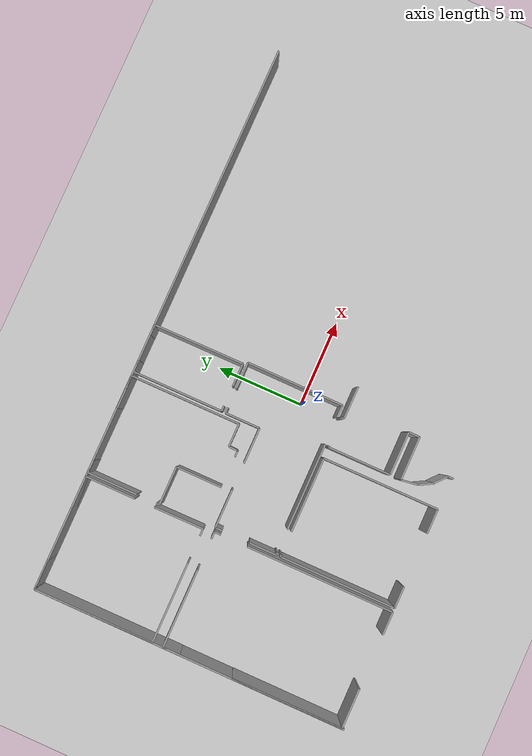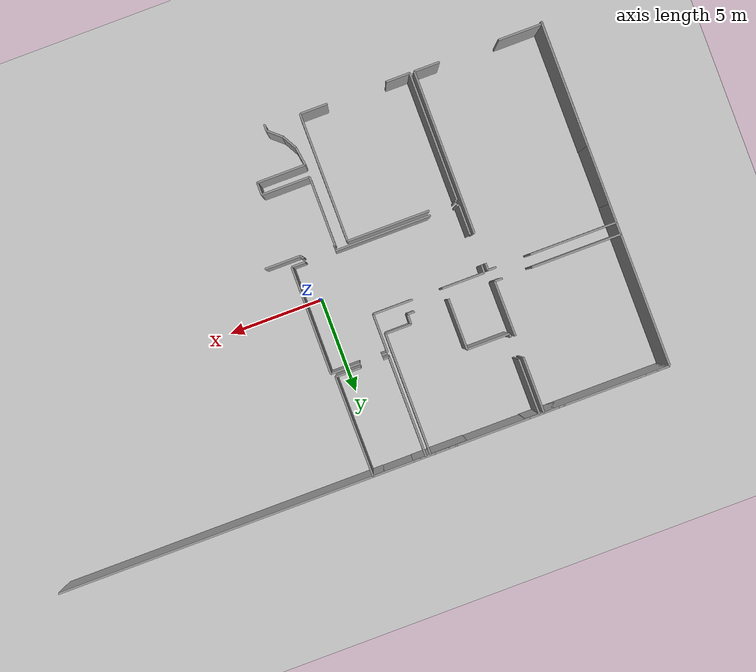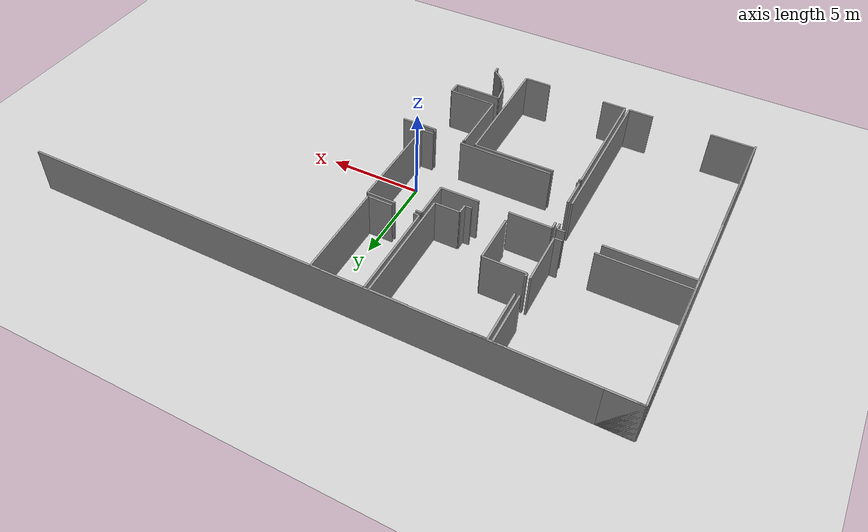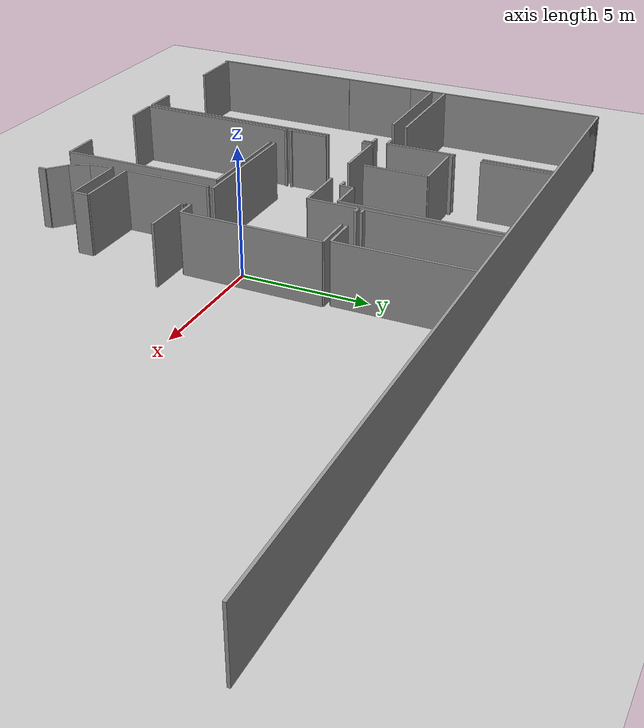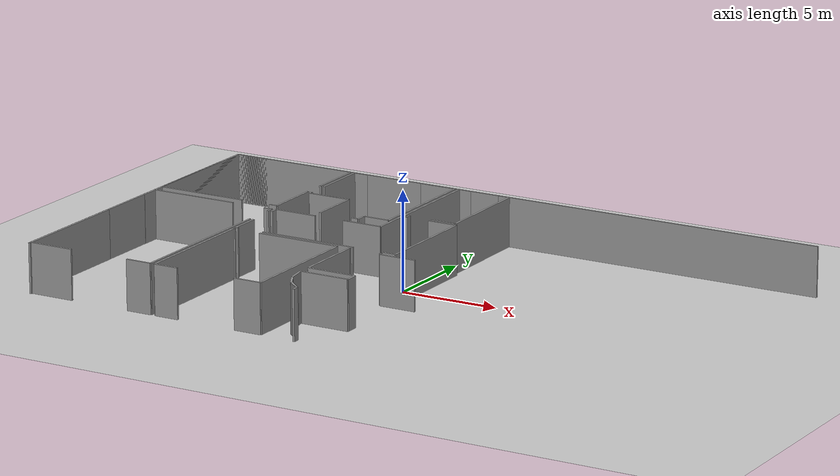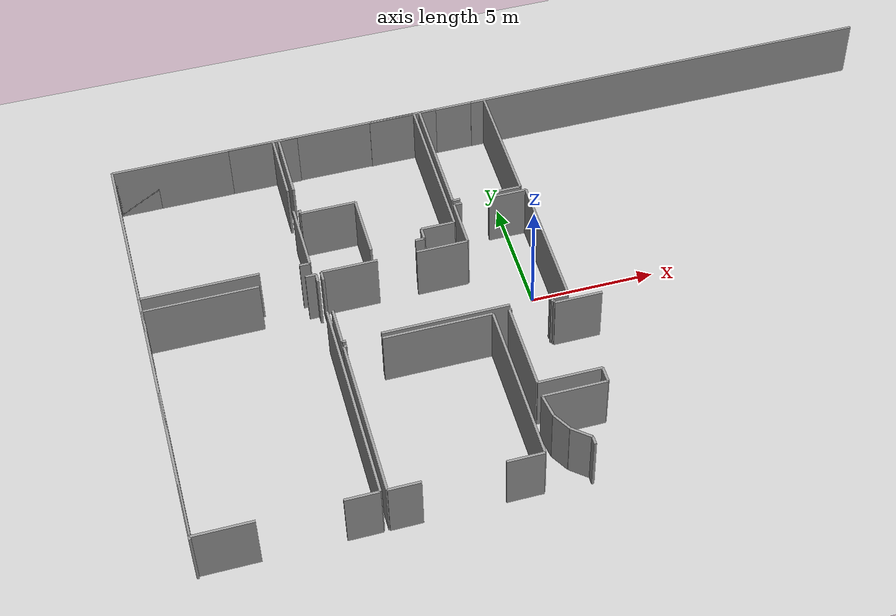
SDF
<sdf version="1.6">
 <world name="default">
  <model name="ground_plane">
   <static>1</static>
   <link name="link">
    <collision name="collision">
     <geometry><plane><normal>0 0 1</normal><size>100 100</size></plane></geometry>
     <surface><friction><ode><mu>100</mu><mu2>50</mu2></ode></friction></surface>
    </collision>
    <visual name="visual">
     <cast_shadows>0</cast_shadows>
     <geometry><plane><normal>0 0 1</normal><size>100 100</size></plane></geometry>
     <material>
      <script><uri>file://media/materials/scripts/gazebo.material</uri><name>Gazebo/Grey</name></script>
     </material>
    </visual>
   </link>
  </model>
  <model name="0510034860_A-40">
   <static>1</static>
   <link name="Wall_0">
    <collision name="Wall_0_Collision">
     <geometry><box><size>0.409606582147 0.1 2.5</size></box></geometry>
     <pose>0.204803291073 0 1.25 0 0 0</pose>
    </collision>
    <visual name="Wall_0_Visual">
     <pose>0.204803291073 0 1.25 0 0 0</pose>
     <geometry><box><size>0.409606582147 0.1 2.5</size></box></geometry>
     <material>
      <script><uri>file://media/materials/scripts/gazebo.material</uri><name>Gazebo/Grey</name></script>
      <ambient>1 1 1 1</ambient>
     </material>
    </visual>
    <pose>6.63522032543 -6.92560168109 0 0 0 3.14159265359</pose>
   </link>
   <link name="Wall_1">
    <collision name="Wall_1_Collision">
     <geometry><box><size>4.66057631875 0.1 2.5</size></box></geometry>
     <pose>2.33028815937 0 1.25 0 0 0</pose>
    </collision>
    <visual name="Wall_1_Visual">
     <pose>2.33028815937 0 1.25 0 0 0</pose>
     <geometry><box><size>4.66057631875 0.1 2.5</size></box></geometry>
     <material>
      <script><uri>file://media/materials/scripts/gazebo.material</uri><name>Gazebo/Grey</name></script>
      <ambient>1 1 1 1</ambient>
     </material>
    </visual>
    <pose>4.66057631875 -6.92560168109 0 0 0 3.14159265359</pose>
   </link>
   <link name="Wall_2">
    <collision name="Wall_2_Collision">
     <geometry><box><size>6.92560168109 0.1 2.5</size></box></geometry>
     <pose>3.46280084054 0 1.25 0 0 0</pose>
    </collision>
    <visual name="Wall_2_Visual">
     <pose>3.46280084054 0 1.25 0 0 0</pose>
     <geometry><box><size>6.92560168109 0.1 2.5</size></box></geometry>
     <material>
      <script><uri>file://media/materials/scripts/gazebo.material</uri><name>Gazebo/Grey</name></script>
      <ambient>1 1 1 1</ambient>
     </material>
    </visual>
    <pose>0.0 -6.92560168109 0 0 0 1.57079632679</pose>
   </link>
   <link name="Wall_3">
    <collision name="Wall_3_Collision">
     <geometry><box><size>1.72768653542 0.1 2.5</size></box></geometry>
     <pose>0.863843267711 0 1.25 0 0 0</pose>
    </collision>
    <visual name="Wall_3_Visual">
     <pose>0.863843267711 0 1.25 0 0 0</pose>
     <geometry><box><size>1.72768653542 0.1 2.5</size></box></geometry>
     <material>
      <script><uri>file://media/materials/scripts/gazebo.material</uri><name>Gazebo/Grey</name></script>
      <ambient>1 1 1 1</ambient>
     </material>
    </visual>
   </link>
   <link name="Wall_4">
    <collision name="Wall_4_Collision">
     <geometry><box><size>1.86633823651 0.1 2.5</size></box></geometry>
     <pose>0.933169118254 0 1.25 0 0 0</pose>
    </collision>
    <visual name="Wall_4_Visual">
     <pose>0.933169118254 0 1.25 0 0 0</pose>
     <geometry><box><size>1.86633823651 0.1 2.5</size></box></geometry>
     <material>
      <script><uri>file://media/materials/scripts/gazebo.material</uri><name>Gazebo/Grey</name></script>
      <ambient>1 1 1 1</ambient>
     </material>
    </visual>
    <pose>4.74907470305 -0.0 0 0 0 0.0</pose>
   </link>
   <link name="Wall_5">
    <collision name="Wall_5_Collision">
     <geometry><box><size>2.90813055099 0.1 2.5</size></box></geometry>
     <pose>1.45406527549 0 1.25 0 0 0</pose>
    </collision>
    <visual name="Wall_5_Visual">
     <pose>1.45406527549 0 1.25 0 0 0</pose>
     <geometry><box><size>2.90813055099 0.1 2.5</size></box></geometry>
     <material>
      <script><uri>file://media/materials/scripts/gazebo.material</uri><name>Gazebo/Grey</name></script>
      <ambient>1 1 1 1</ambient>
     </material>
    </visual>
    <pose>6.61541293956 -0.0 0 0 0 -1.57079632679</pose>
   </link>
   <link name="Wall_6">
    <collision name="Wall_6_Collision">
     <geometry><box><size>2.8801381985 0.1 2.5</size></box></geometry>
     <pose>1.44006909925 0 1.25 0 0 0</pose>
    </collision>
    <visual name="Wall_6_Visual">
     <pose>1.44006909925 0 1.25 0 0 0</pose>
     <geometry><box><size>2.8801381985 0.1 2.5</size></box></geometry>
     <material>
      <script><uri>file://media/materials/scripts/gazebo.material</uri><name>Gazebo/Grey</name></script>
      <ambient>1 1 1 1</ambient>
     </material>
    </visual>
    <pose>6.61541293956 -4.04553159342 0 0 0 -1.56391903805</pose>
   </link>
   <link name="Wall_7">
    <collision name="Wall_7_Collision">
     <geometry><box><size>0.36275449634 0.1 2.5</size></box></geometry>
     <pose>0.18137724817 0 1.25 0 0 0</pose>
    </collision>
    <visual name="Wall_7_Visual">
     <pose>0.18137724817 0 1.25 0 0 0</pose>
     <geometry><box><size>0.36275449634 0.1 2.5</size></box></geometry>
     <material>
      <script><uri>file://media/materials/scripts/gazebo.material</uri><name>Gazebo/Grey</name></script>
      <ambient>1 1 1 1</ambient>
     </material>
    </visual>
    <pose>11.2159322486 -6.90388973889 0 0 0 3.14159265359</pose>
   </link>
   <link name="Wall_8">
    <collision name="Wall_8_Collision">
     <geometry><box><size>2.65406273609 0.1 2.5</size></box></geometry>
     <pose>1.32703136804 0 1.25 0 0 0</pose>
    </collision>
    <visual name="Wall_8_Visual">
     <pose>1.32703136804 0 1.25 0 0 0</pose>
     <geometry><box><size>2.65406273609 0.1 2.5</size></box></geometry>
     <material>
      <script><uri>file://media/materials/scripts/gazebo.material</uri><name>Gazebo/Grey</name></script>
      <ambient>1 1 1 1</ambient>
     </material>
    </visual>
    <pose>9.07444910708 -6.90388973889 0 0 0 1.57079632679</pose>
   </link>
   <link name="Wall_9">
    <collision name="Wall_9_Collision">
     <geometry><box><size>2.22731514694 0.1 2.5</size></box></geometry>
     <pose>1.11365757347 0 1.25 0 0 0</pose>
    </collision>
    <visual name="Wall_9_Visual">
     <pose>1.11365757347 0 1.25 0 0 0</pose>
     <geometry><box><size>2.22731514694 0.1 2.5</size></box></geometry>
     <material>
      <script><uri>file://media/materials/scripts/gazebo.material</uri><name>Gazebo/Grey</name></script>
      <ambient>1 1 1 1</ambient>
     </material>
    </visual>
    <pose>9.07444910708 -4.2498270028 0 0 0 3.14159265359</pose>
   </link>
   <link name="Wall_10">
    <collision name="Wall_10_Collision">
     <geometry><box><size>0.191979278427 0.1 2.5</size></box></geometry>
     <pose>0.0959896392135 0 1.25 0 0 0</pose>
    </collision>
    <visual name="Wall_10_Visual">
     <pose>0.0959896392135 0 1.25 0 0 0</pose>
     <geometry><box><size>0.191979278427 0.1 2.5</size></box></geometry>
     <material>
      <script><uri>file://media/materials/scripts/gazebo.material</uri><name>Gazebo/Grey</name></script>
      <ambient>1 1 1 1</ambient>
     </material>
    </visual>
    <pose>6.84713396014 -4.2498270028 0 0 0 1.57079632679</pose>
   </link>
   <link name="Wall_11">
    <collision name="Wall_11_Collision">
     <geometry><box><size>2.89010075103 0.1 2.5</size></box></geometry>
     <pose>1.44505037552 0 1.25 0 0 0</pose>
    </collision>
    <visual name="Wall_11_Visual">
     <pose>1.44505037552 0 1.25 0 0 0</pose>
     <geometry><box><size>2.89010075103 0.1 2.5</size></box></geometry>
     <material>
      <script><uri>file://media/materials/scripts/gazebo.material</uri><name>Gazebo/Grey</name></script>
      <ambient>1 1 1 1</ambient>
     </material>
    </visual>
    <pose>6.84713396014 -2.91066995943 0 0 0 1.57079632679</pose>
   </link>
   <link name="Wall_12">
    <collision name="Wall_12_Collision">
     <geometry><box><size>0.758267361618 0.1 2.5</size></box></geometry>
     <pose>0.379133680809 0 1.25 0 0 0</pose>
    </collision>
    <visual name="Wall_12_Visual">
     <pose>0.379133680809 0 1.25 0 0 0</pose>
     <geometry><box><size>0.758267361618 0.1 2.5</size></box></geometry>
     <material>
      <script><uri>file://media/materials/scripts/gazebo.material</uri><name>Gazebo/Grey</name></script>
      <ambient>1 1 1 1</ambient>
     </material>
    </visual>
    <pose>6.84713396014 -0.0205692084029 0 0 0 0.0</pose>
   </link>
   <link name="Wall_13">
    <collision name="Wall_13_Collision">
     <geometry><box><size>1.90696877162 0.1 2.5</size></box></geometry>
     <pose>0.953484385812 0 1.25 0 0 0</pose>
    </collision>
    <visual name="Wall_13_Visual">
     <pose>0.953484385812 0 1.25 0 0 0</pose>
     <geometry><box><size>1.90696877162 0.1 2.5</size></box></geometry>
     <material>
      <script><uri>file://media/materials/scripts/gazebo.material</uri><name>Gazebo/Grey</name></script>
      <ambient>1 1 1 1</ambient>
     </material>
    </visual>
    <pose>10.6670391132 -0.0205692084029 0 0 0 0.0</pose>
   </link>
   <link name="Wall_14">
    <collision name="Wall_14_Collision">
     <geometry><box><size>6.35677418945 0.1 2.5</size></box></geometry>
     <pose>3.17838709473 0 1.25 0 0 0</pose>
    </collision>
    <visual name="Wall_14_Visual">
     <pose>3.17838709473 0 1.25 0 0 0</pose>
     <geometry><box><size>6.35677418945 0.1 2.5</size></box></geometry>
     <material>
      <script><uri>file://media/materials/scripts/gazebo.material</uri><name>Gazebo/Grey</name></script>
      <ambient>1 1 1 1</ambient>
     </material>
    </visual>
    <pose>12.5740078849 -0.0205692084029 0 0 0 -1.57079632679</pose>
   </link>
   <link name="Wall_15">
    <collision name="Wall_15_Collision">
     <geometry><box><size>1.3387761321 0.1 2.5</size></box></geometry>
     <pose>0.66938806605 0 1.25 0 0 0</pose>
    </collision>
    <visual name="Wall_15_Visual">
     <pose>0.66938806605 0 1.25 0 0 0</pose>
     <geometry><box><size>1.3387761321 0.1 2.5</size></box></geometry>
     <material>
      <script><uri>file://media/materials/scripts/gazebo.material</uri><name>Gazebo/Grey</name></script>
      <ambient>1 1 1 1</ambient>
     </material>
    </visual>
    <pose>12.5740078849 -6.37734339786 0 0 0 3.14159265359</pose>
   </link>
   <link name="Wall_16">
    <collision name="Wall_16_Collision">
     <geometry><box><size>0.526899914703 0.1 2.5</size></box></geometry>
     <pose>0.263449957351 0 1.25 0 0 0</pose>
    </collision>
    <visual name="Wall_16_Visual">
     <pose>0.263449957351 0 1.25 0 0 0</pose>
     <geometry><box><size>0.526899914703 0.1 2.5</size></box></geometry>
     <material>
      <script><uri>file://media/materials/scripts/gazebo.material</uri><name>Gazebo/Grey</name></script>
      <ambient>1 1 1 1</ambient>
     </material>
    </visual>
    <pose>11.2352317528 -6.37734339786 0 0 0 -1.60743292845</pose>
   </link>
   <link name="Wall_17">
    <collision name="Wall_17_Collision">
     <geometry><box><size>1.32493635608 0.1 2.5</size></box></geometry>
     <pose>0.662468178038 0 1.25 0 0 0</pose>
    </collision>
    <visual name="Wall_17_Visual">
     <pose>0.662468178038 0 1.25 0 0 0</pose>
     <geometry><box><size>1.32493635608 0.1 2.5</size></box></geometry>
     <material>
      <script><uri>file://media/materials/scripts/gazebo.material</uri><name>Gazebo/Grey</name></script>
      <ambient>1 1 1 1</ambient>
     </material>
    </visual>
    <pose>6.73362240266 -18.0047867849 0 0 0 3.14159265359</pose>
   </link>
   <link name="Wall_18">
    <collision name="Wall_18_Collision">
     <geometry><box><size>2.29156218059 0.1 2.5</size></box></geometry>
     <pose>1.1457810903 0 1.25 0 0 0</pose>
    </collision>
    <visual name="Wall_18_Visual">
     <pose>1.1457810903 0 1.25 0 0 0</pose>
     <geometry><box><size>2.29156218059 0.1 2.5</size></box></geometry>
     <material>
      <script><uri>file://media/materials/scripts/gazebo.material</uri><name>Gazebo/Grey</name></script>
      <ambient>1 1 1 1</ambient>
     </material>
    </visual>
    <pose>2.30286254817 -18.0047867849 0 0 0 3.14159265359</pose>
   </link>
   <link name="Wall_19">
    <collision name="Wall_19_Collision">
     <geometry><box><size>6.42571912873 0.1 2.5</size></box></geometry>
     <pose>3.21285956436 0 1.25 0 0 0</pose>
    </collision>
    <visual name="Wall_19_Visual">
     <pose>3.21285956436 0 1.25 0 0 0</pose>
     <geometry><box><size>6.42571912873 0.1 2.5</size></box></geometry>
     <material>
      <script><uri>file://media/materials/scripts/gazebo.material</uri><name>Gazebo/Grey</name></script>
      <ambient>1 1 1 1</ambient>
     </material>
    </visual>
    <pose>0.0113003675794 -18.0047867849 0 0 0 1.57079632679</pose>
   </link>
   <link name="Wall_20">
    <collision name="Wall_20_Collision">
     <geometry><box><size>0.987322003339 0.1 2.5</size></box></geometry>
     <pose>0.49366100167 0 1.25 0 0 0</pose>
    </collision>
    <visual name="Wall_20_Visual">
     <pose>0.49366100167 0 1.25 0 0 0</pose>
     <geometry><box><size>0.987322003339 0.1 2.5</size></box></geometry>
     <material>
      <script><uri>file://media/materials/scripts/gazebo.material</uri><name>Gazebo/Grey</name></script>
      <ambient>1 1 1 1</ambient>
     </material>
    </visual>
    <pose>0.0113003675794 -8.53723725058 0 0 0 1.57079632679</pose>
   </link>
   <link name="Wall_21">
    <collision name="Wall_21_Collision">
     <geometry><box><size>4.51824247542 0.1 2.5</size></box></geometry>
     <pose>2.25912123771 0 1.25 0 0 0</pose>
    </collision>
    <visual name="Wall_21_Visual">
     <pose>2.25912123771 0 1.25 0 0 0</pose>
     <geometry><box><size>4.51824247542 0.1 2.5</size></box></geometry>
     <material>
      <script><uri>file://media/materials/scripts/gazebo.material</uri><name>Gazebo/Grey</name></script>
      <ambient>1 1 1 1</ambient>
     </material>
    </visual>
    <pose>0.0113003675794 -7.54991524724 0 0 0 0.0</pose>
   </link>
   <link name="Wall_22">
    <collision name="Wall_22_Collision">
     <geometry><box><size>0.424970003238 0.1 2.5</size></box></geometry>
     <pose>0.212485001619 0 1.25 0 0 0</pose>
    </collision>
    <visual name="Wall_22_Visual">
     <pose>0.212485001619 0 1.25 0 0 0</pose>
     <geometry><box><size>0.424970003238 0.1 2.5</size></box></geometry>
     <material>
      <script><uri>file://media/materials/scripts/gazebo.material</uri><name>Gazebo/Grey</name></script>
      <ambient>1 1 1 1</ambient>
     </material>
    </visual>
    <pose>6.31906397405 -7.54991524724 0 0 0 0.0</pose>
   </link>
   <link name="Wall_23">
    <collision name="Wall_23_Collision">
     <geometry><box><size>0.370245751252 0.1 2.5</size></box></geometry>
     <pose>0.185122875626 0 1.25 0 0 0</pose>
    </collision>
    <visual name="Wall_23_Visual">
     <pose>0.185122875626 0 1.25 0 0 0</pose>
     <geometry><box><size>0.370245751252 0.1 2.5</size></box></geometry>
     <material>
      <script><uri>file://media/materials/scripts/gazebo.material</uri><name>Gazebo/Grey</name></script>
      <ambient>1 1 1 1</ambient>
     </material>
    </visual>
    <pose>6.74403397728 -7.54991524724 0 0 0 -1.57079632679</pose>
   </link>
   <link name="Wall_24">
    <collision name="Wall_24_Collision">
     <geometry><box><size>8.52378474456 0.1 2.5</size></box></geometry>
     <pose>4.26189237228 0 1.25 0 0 0</pose>
    </collision>
    <visual name="Wall_24_Visual">
     <pose>4.26189237228 0 1.25 0 0 0</pose>
     <geometry><box><size>8.52378474456 0.1 2.5</size></box></geometry>
     <material>
      <script><uri>file://media/materials/scripts/gazebo.material</uri><name>Gazebo/Grey</name></script>
      <ambient>1 1 1 1</ambient>
     </material>
    </visual>
    <pose>6.74403397728 -9.48100839909 0 0 0 -1.5720178003</pose>
   </link>
   <link name="Wall_25">
    <collision name="Wall_25_Collision">
     <geometry><box><size>1.43159151076 0.1 2.5</size></box></geometry>
     <pose>0.715795755379 0 1.25 0 0 0</pose>
    </collision>
    <visual name="Wall_25_Visual">
     <pose>0.715795755379 0 1.25 0 0 0</pose>
     <geometry><box><size>1.43159151076 0.1 2.5</size></box></geometry>
     <material>
      <script><uri>file://media/materials/scripts/gazebo.material</uri><name>Gazebo/Grey</name></script>
      <ambient>1 1 1 1</ambient>
     </material>
    </visual>
    <pose>12.7419897535 -18.0077071046 0 0 0 3.14159265359</pose>
   </link>
   <link name="Wall_26">
    <collision name="Wall_26_Collision">
     <geometry><box><size>1.24862713231 0.1 2.5</size></box></geometry>
     <pose>0.624313566155 0 1.25 0 0 0</pose>
    </collision>
    <visual name="Wall_26_Visual">
     <pose>0.624313566155 0 1.25 0 0 0</pose>
     <geometry><box><size>1.24862713231 0.1 2.5</size></box></geometry>
     <material>
      <script><uri>file://media/materials/scripts/gazebo.material</uri><name>Gazebo/Grey</name></script>
      <ambient>1 1 1 1</ambient>
     </material>
    </visual>
    <pose>8.21777966823 -18.0077071046 0 0 0 3.14159265359</pose>
   </link>
   <link name="Wall_27">
    <collision name="Wall_27_Collision">
     <geometry><box><size>6.6915951929 0.1 2.5</size></box></geometry>
     <pose>3.34579759645 0 1.25 0 0 0</pose>
    </collision>
    <visual name="Wall_27_Visual">
     <pose>3.34579759645 0 1.25 0 0 0</pose>
     <geometry><box><size>6.6915951929 0.1 2.5</size></box></geometry>
     <material>
      <script><uri>file://media/materials/scripts/gazebo.material</uri><name>Gazebo/Grey</name></script>
      <ambient>1 1 1 1</ambient>
     </material>
    </visual>
    <pose>6.96915253592 -18.0077071046 0 0 0 1.57079632679</pose>
   </link>
   <link name="Wall_28">
    <collision name="Wall_28_Collision">
     <geometry><box><size>0.118336433528 0.1 2.5</size></box></geometry>
     <pose>0.0591682167639 0 1.25 0 0 0</pose>
    </collision>
    <visual name="Wall_28_Visual">
     <pose>0.0591682167639 0 1.25 0 0 0</pose>
     <geometry><box><size>0.118336433528 0.1 2.5</size></box></geometry>
     <material>
      <script><uri>file://media/materials/scripts/gazebo.material</uri><name>Gazebo/Grey</name></script>
      <ambient>1 1 1 1</ambient>
     </material>
    </visual>
    <pose>6.96915253592 -11.3161119117 0 0 0 0.0</pose>
   </link>
   <link name="Wall_29">
    <collision name="Wall_29_Collision">
     <geometry><box><size>4.2994724379 0.1 2.5</size></box></geometry>
     <pose>2.14973621895 0 1.25 0 0 0</pose>
    </collision>
    <visual name="Wall_29_Visual">
     <pose>2.14973621895 0 1.25 0 0 0</pose>
     <geometry><box><size>4.2994724379 0.1 2.5</size></box></geometry>
     <material>
      <script><uri>file://media/materials/scripts/gazebo.material</uri><name>Gazebo/Grey</name></script>
      <ambient>1 1 1 1</ambient>
     </material>
    </visual>
    <pose>8.43667667617 -11.3161119117 0 0 0 0.0</pose>
   </link>
   <link name="Wall_30">
    <collision name="Wall_30_Collision">
     <geometry><box><size>6.69159774185 0.1 2.5</size></box></geometry>
     <pose>3.34579887092 0 1.25 0 0 0</pose>
    </collision>
    <visual name="Wall_30_Visual">
     <pose>3.34579887092 0 1.25 0 0 0</pose>
     <geometry><box><size>6.69159774185 0.1 2.5</size></box></geometry>
     <material>
      <script><uri>file://media/materials/scripts/gazebo.material</uri><name>Gazebo/Grey</name></script>
      <ambient>1 1 1 1</ambient>
     </material>
    </visual>
    <pose>12.7361491141 -11.3161119117 0 0 0 -1.56992349487</pose>
   </link>
   <link name="Wall_31">
    <collision name="Wall_31_Collision">
     <geometry><box><size>0.718779560301 0.1 2.5</size></box></geometry>
     <pose>0.359389780151 0 1.25 0 0 0</pose>
    </collision>
    <visual name="Wall_31_Visual">
     <pose>0.359389780151 0 1.25 0 0 0</pose>
     <geometry><box><size>0.718779560301 0.1 2.5</size></box></geometry>
     <material>
      <script><uri>file://media/materials/scripts/gazebo.material</uri><name>Gazebo/Grey</name></script>
      <ambient>1 1 1 1</ambient>
     </material>
    </visual>
    <pose>15.7676949155 -11.0781693405 0 0 0 3.14159265359</pose>
   </link>
   <link name="Wall_32">
    <collision name="Wall_32_Collision">
     <geometry><box><size>5.0091101278 0.1 2.5</size></box></geometry>
     <pose>2.5045550639 0 1.25 0 0 0</pose>
    </collision>
    <visual name="Wall_32_Visual">
     <pose>2.5045550639 0 1.25 0 0 0</pose>
     <geometry><box><size>5.0091101278 0.1 2.5</size></box></geometry>
     <material>
      <script><uri>file://media/materials/scripts/gazebo.material</uri><name>Gazebo/Grey</name></script>
      <ambient>1 1 1 1</ambient>
     </material>
    </visual>
    <pose>13.4707999771 -11.0781693405 0 0 0 3.14159265359</pose>
   </link>
   <link name="Wall_33">
    <collision name="Wall_33_Collision">
     <geometry><box><size>0.141952932064 0.1 2.5</size></box></geometry>
     <pose>0.0709764660322 0 1.25 0 0 0</pose>
    </collision>
    <visual name="Wall_33_Visual">
     <pose>0.0709764660322 0 1.25 0 0 0</pose>
     <geometry><box><size>0.141952932064 0.1 2.5</size></box></geometry>
     <material>
      <script><uri>file://media/materials/scripts/gazebo.material</uri><name>Gazebo/Grey</name></script>
      <ambient>1 1 1 1</ambient>
     </material>
    </visual>
    <pose>7.1009478342 -11.0781693405 0 0 0 3.14159265359</pose>
   </link>
   <link name="Wall_34">
    <collision name="Wall_34_Collision">
     <geometry><box><size>1.58052781605 0.1 2.5</size></box></geometry>
     <pose>0.790263908023 0 1.25 0 0 0</pose>
    </collision>
    <visual name="Wall_34_Visual">
     <pose>0.790263908023 0 1.25 0 0 0</pose>
     <geometry><box><size>1.58052781605 0.1 2.5</size></box></geometry>
     <material>
      <script><uri>file://media/materials/scripts/gazebo.material</uri><name>Gazebo/Grey</name></script>
      <ambient>1 1 1 1</ambient>
     </material>
    </visual>
    <pose>6.95899490214 -11.0781693405 0 0 0 1.57079632679</pose>
   </link>
   <link name="Wall_35">
    <collision name="Wall_35_Collision">
     <geometry><box><size>0.417478748326 0.1 2.5</size></box></geometry>
     <pose>0.208739374163 0 1.25 0 0 0</pose>
    </collision>
    <visual name="Wall_35_Visual">
     <pose>0.208739374163 0 1.25 0 0 0</pose>
     <geometry><box><size>0.417478748326 0.1 2.5</size></box></geometry>
     <material>
      <script><uri>file://media/materials/scripts/gazebo.material</uri><name>Gazebo/Grey</name></script>
      <ambient>1 1 1 1</ambient>
     </material>
    </visual>
    <pose>6.95899490214 -7.91152700978 0 0 0 1.57079632679</pose>
   </link>
   <link name="Wall_36">
    <collision name="Wall_36_Collision">
     <geometry><box><size>2.22071268498 0.1 2.5</size></box></geometry>
     <pose>1.11035634249 0 1.25 0 0 0</pose>
    </collision>
    <visual name="Wall_36_Visual">
     <pose>1.11035634249 0 1.25 0 0 0</pose>
     <geometry><box><size>2.22071268498 0.1 2.5</size></box></geometry>
     <material>
      <script><uri>file://media/materials/scripts/gazebo.material</uri><name>Gazebo/Grey</name></script>
      <ambient>1 1 1 1</ambient>
     </material>
    </visual>
    <pose>6.95899490214 -7.49404826146 0 0 0 0.0</pose>
   </link>
   <link name="Wall_37">
    <collision name="Wall_37_Collision">
     <geometry><box><size>2.06466603605 0.1 2.5</size></box></geometry>
     <pose>1.03233301802 0 1.25 0 0 0</pose>
    </collision>
    <visual name="Wall_37_Visual">
     <pose>1.03233301802 0 1.25 0 0 0</pose>
     <geometry><box><size>2.06466603605 0.1 2.5</size></box></geometry>
     <material>
      <script><uri>file://media/materials/scripts/gazebo.material</uri><name>Gazebo/Grey</name></script>
      <ambient>1 1 1 1</ambient>
     </material>
    </visual>
    <pose>10.7411898398 -7.49404826146 0 0 0 0.0</pose>
   </link>
   <link name="Wall_38">
    <collision name="Wall_38_Collision">
     <geometry><box><size>2.02886037698 0.1 2.5</size></box></geometry>
     <pose>1.01443018849 0 1.25 0 0 0</pose>
    </collision>
    <visual name="Wall_38_Visual">
     <pose>1.01443018849 0 1.25 0 0 0</pose>
     <geometry><box><size>2.02886037698 0.1 2.5</size></box></geometry>
     <material>
      <script><uri>file://media/materials/scripts/gazebo.material</uri><name>Gazebo/Grey</name></script>
      <ambient>1 1 1 1</ambient>
     </material>
    </visual>
    <pose>12.8058558759 -7.49404826146 0 0 0 1.57079632679</pose>
   </link>
   <link name="Wall_39">
    <collision name="Wall_39_Collision">
     <geometry><box><size>0.314632706311 0.1 2.5</size></box></geometry>
     <pose>0.157316353156 0 1.25 0 0 0</pose>
    </collision>
    <visual name="Wall_39_Visual">
     <pose>0.157316353156 0 1.25 0 0 0</pose>
     <geometry><box><size>0.314632706311 0.1 2.5</size></box></geometry>
     <material>
      <script><uri>file://media/materials/scripts/gazebo.material</uri><name>Gazebo/Grey</name></script>
      <ambient>1 1 1 1</ambient>
     </material>
    </visual>
    <pose>12.8058558759 -5.46518788448 0 0 0 0.0</pose>
   </link>
   <link name="Wall_40">
    <collision name="Wall_40_Collision">
     <geometry><box><size>1.53392967108 0.1 2.5</size></box></geometry>
     <pose>0.766964835542 0 1.25 0 0 0</pose>
    </collision>
    <visual name="Wall_40_Visual">
     <pose>0.766964835542 0 1.25 0 0 0</pose>
     <geometry><box><size>1.53392967108 0.1 2.5</size></box></geometry>
     <material>
      <script><uri>file://media/materials/scripts/gazebo.material</uri><name>Gazebo/Grey</name></script>
      <ambient>1 1 1 1</ambient>
     </material>
    </visual>
    <pose>14.2590323584 -5.46518788448 0 0 0 0.0</pose>
   </link>
   <link name="Wall_41">
    <collision name="Wall_41_Collision">
     <geometry><box><size>5.61303832626 0.1 2.5</size></box></geometry>
     <pose>2.80651916313 0 1.25 0 0 0</pose>
    </collision>
    <visual name="Wall_41_Visual">
     <pose>2.80651916313 0 1.25 0 0 0</pose>
     <geometry><box><size>5.61303832626 0.1 2.5</size></box></geometry>
     <material>
      <script><uri>file://media/materials/scripts/gazebo.material</uri><name>Gazebo/Grey</name></script>
      <ambient>1 1 1 1</ambient>
     </material>
    </visual>
    <pose>15.7929620295 -5.46518788448 0 0 0 -1.57529784592</pose>
   </link>
   <link name="Wall_42">
    <collision name="Wall_42_Collision">
     <geometry><box><size>1.33522096028 0.1 2.5</size></box></geometry>
     <pose>0.667610480139 0 1.25 0 0 0</pose>
    </collision>
    <visual name="Wall_42_Visual">
     <pose>0.667610480139 0 1.25 0 0 0</pose>
     <geometry><box><size>1.33522096028 0.1 2.5</size></box></geometry>
     <material>
      <script><uri>file://media/materials/scripts/gazebo.material</uri><name>Gazebo/Grey</name></script>
      <ambient>1 1 1 1</ambient>
     </material>
    </visual>
    <pose>15.62472622 -5.23994235543 0 0 0 3.14159265359</pose>
   </link>
   <link name="Wall_43">
    <collision name="Wall_43_Collision">
     <geometry><box><size>0.304855983799 0.1 2.5</size></box></geometry>
     <pose>0.152427991899 0 1.25 0 0 0</pose>
    </collision>
    <visual name="Wall_43_Visual">
     <pose>0.152427991899 0 1.25 0 0 0</pose>
     <geometry><box><size>0.304855983799 0.1 2.5</size></box></geometry>
     <material>
      <script><uri>file://media/materials/scripts/gazebo.material</uri><name>Gazebo/Grey</name></script>
      <ambient>1 1 1 1</ambient>
     </material>
    </visual>
    <pose>13.1179491737 -5.23994235543 0 0 0 3.14159265359</pose>
   </link>
   <link name="Wall_44">
    <collision name="Wall_44_Collision">
     <geometry><box><size>5.23054654418 0.1 2.5</size></box></geometry>
     <pose>2.61527327209 0 1.25 0 0 0</pose>
    </collision>
    <visual name="Wall_44_Visual">
     <pose>2.61527327209 0 1.25 0 0 0</pose>
     <geometry><box><size>5.23054654418 0.1 2.5</size></box></geometry>
     <material>
      <script><uri>file://media/materials/scripts/gazebo.material</uri><name>Gazebo/Grey</name></script>
      <ambient>1 1 1 1</ambient>
     </material>
    </visual>
    <pose>12.8130931899 -5.23994235543 0 0 0 1.57079632679</pose>
   </link>
   <link name="Wall_45">
    <collision name="Wall_45_Collision">
     <geometry><box><size>0.684497546297 0.1 2.5</size></box></geometry>
     <pose>0.342248773148 0 1.25 0 0 0</pose>
    </collision>
    <visual name="Wall_45_Visual">
     <pose>0.342248773148 0 1.25 0 0 0</pose>
     <geometry><box><size>0.684497546297 0.1 2.5</size></box></geometry>
     <material>
      <script><uri>file://media/materials/scripts/gazebo.material</uri><name>Gazebo/Grey</name></script>
      <ambient>1 1 1 1</ambient>
     </material>
    </visual>
    <pose>12.8130931899 -0.00939581124577 0 0 0 0.0</pose>
   </link>
   <link name="Wall_46">
    <collision name="Wall_46_Collision">
     <geometry><box><size>0.588380936661 0.1 2.5</size></box></geometry>
     <pose>0.29419046833 0 1.25 0 0 0</pose>
    </collision>
    <visual name="Wall_46_Visual">
     <pose>0.29419046833 0 1.25 0 0 0</pose>
     <geometry><box><size>0.588380936661 0.1 2.5</size></box></geometry>
     <material>
      <script><uri>file://media/materials/scripts/gazebo.material</uri><name>Gazebo/Grey</name></script>
      <ambient>1 1 1 1</ambient>
     </material>
    </visual>
    <pose>15.0142524299 -0.00939581124577 0 0 0 0.0</pose>
   </link>
   <link name="Wall_47">
    <collision name="Wall_47_Collision">
     <geometry><box><size>5.23059320202 0.1 2.5</size></box></geometry>
     <pose>2.61529660101 0 1.25 0 0 0</pose>
    </collision>
    <visual name="Wall_47_Visual">
     <pose>2.61529660101 0 1.25 0 0 0</pose>
     <geometry><box><size>5.23059320202 0.1 2.5</size></box></geometry>
     <material>
      <script><uri>file://media/materials/scripts/gazebo.material</uri><name>Gazebo/Grey</name></script>
      <ambient>1 1 1 1</ambient>
     </material>
    </visual>
    <pose>15.6026333666 -0.00939581124577 0 0 0 -1.56657253834</pose>
   </link>
   <link name="Wall_48">
    <collision name="Wall_48_Collision">
     <geometry><box><size>0.328218541491 0.1 2.5</size></box></geometry>
     <pose>0.164109270745 0 1.25 0 0 0</pose>
    </collision>
    <visual name="Wall_48_Visual">
     <pose>0.164109270745 0 1.25 0 0 0</pose>
     <geometry><box><size>0.328218541491 0.1 2.5</size></box></geometry>
     <material>
      <script><uri>file://media/materials/scripts/gazebo.material</uri><name>Gazebo/Grey</name></script>
      <ambient>1 1 1 1</ambient>
     </material>
    </visual>
    <pose>14.5746808281 -18.1378517874 0 0 0 1.57079632679</pose>
   </link>
   <link name="Wall_49">
    <collision name="Wall_49_Collision">
     <geometry><box><size>0.86828522493 0.1 2.5</size></box></geometry>
     <pose>0.434142612465 0 1.25 0 0 0</pose>
    </collision>
    <visual name="Wall_49_Visual">
     <pose>0.434142612465 0 1.25 0 0 0</pose>
     <geometry><box><size>0.86828522493 0.1 2.5</size></box></geometry>
     <material>
      <script><uri>file://media/materials/scripts/gazebo.material</uri><name>Gazebo/Grey</name></script>
      <ambient>1 1 1 1</ambient>
     </material>
    </visual>
    <pose>14.5746808281 -17.8096332459 0 0 0 2.42822392332</pose>
   </link>
   <link name="Wall_50">
    <collision name="Wall_50_Collision">
     <geometry><box><size>0.830751598837 0.1 2.5</size></box></geometry>
     <pose>0.415375799419 0 1.25 0 0 0</pose>
    </collision>
    <visual name="Wall_50_Visual">
     <pose>0.415375799419 0 1.25 0 0 0</pose>
     <geometry><box><size>0.830751598837 0.1 2.5</size></box></geometry>
     <material>
      <script><uri>file://media/materials/scripts/gazebo.material</uri><name>Gazebo/Grey</name></script>
      <ambient>1 1 1 1</ambient>
     </material>
    </visual>
    <pose>13.9181167747 -17.2414406064 0 0 0 2.07868161309</pose>
   </link>
   <link name="Wall_51">
    <collision name="Wall_51_Collision">
     <geometry><box><size>0.957079090312 0.1 2.5</size></box></geometry>
     <pose>0.478539545156 0 1.25 0 0 0</pose>
    </collision>
    <visual name="Wall_51_Visual">
     <pose>0.478539545156 0 1.25 0 0 0</pose>
     <geometry><box><size>0.957079090312 0.1 2.5</size></box></geometry>
     <material>
      <script><uri>file://media/materials/scripts/gazebo.material</uri><name>Gazebo/Grey</name></script>
      <ambient>1 1 1 1</ambient>
     </material>
    </visual>
    <pose>13.5140968911 -16.5155507025 0 0 0 1.716445709</pose>
   </link>
   <link name="Wall_52">
    <collision name="Wall_52_Collision">
     <geometry><box><size>2.52506078709 0.1 2.5</size></box></geometry>
     <pose>1.26253039354 0 1.25 0 0 0</pose>
    </collision>
    <visual name="Wall_52_Visual">
     <pose>1.26253039354 0 1.25 0 0 0</pose>
     <geometry><box><size>2.52506078709 0.1 2.5</size></box></geometry>
     <material>
      <script><uri>file://media/materials/scripts/gazebo.material</uri><name>Gazebo/Grey</name></script>
      <ambient>1 1 1 1</ambient>
     </material>
    </visual>
    <pose>13.3751912492 -15.5686052934 0 0 0 0.0</pose>
   </link>
   <link name="Wall_53">
    <collision name="Wall_53_Collision">
     <geometry><box><size>0.637518490068 0.1 2.5</size></box></geometry>
     <pose>0.318759245034 0 1.25 0 0 0</pose>
    </collision>
    <visual name="Wall_53_Visual">
     <pose>0.318759245034 0 1.25 0 0 0</pose>
     <geometry><box><size>0.637518490068 0.1 2.5</size></box></geometry>
     <material>
      <script><uri>file://media/materials/scripts/gazebo.material</uri><name>Gazebo/Grey</name></script>
      <ambient>1 1 1 1</ambient>
     </material>
    </visual>
    <pose>15.9002520363 -15.5686052934 0 0 0 1.57079632679</pose>
   </link>
   <link name="Wall_54">
    <collision name="Wall_54_Collision">
     <geometry><box><size>2.51236374487 0.1 2.5</size></box></geometry>
     <pose>1.25618187243 0 1.25 0 0 0</pose>
    </collision>
    <visual name="Wall_54_Visual">
     <pose>1.25618187243 0 1.25 0 0 0</pose>
     <geometry><box><size>2.51236374487 0.1 2.5</size></box></geometry>
     <material>
      <script><uri>file://media/materials/scripts/gazebo.material</uri><name>Gazebo/Grey</name></script>
      <ambient>1 1 1 1</ambient>
     </material>
    </visual>
    <pose>15.9002520363 -14.9310868033 0 0 0 3.14159265359</pose>
   </link>
   <link name="Wall_55">
    <collision name="Wall_55_Collision">
     <geometry><box><size>3.62043461976 0.1 2.5</size></box></geometry>
     <pose>1.81021730988 0 1.25 0 0 0</pose>
    </collision>
    <visual name="Wall_55_Visual">
     <pose>1.81021730988 0 1.25 0 0 0</pose>
     <geometry><box><size>3.62043461976 0.1 2.5</size></box></geometry>
     <material>
      <script><uri>file://media/materials/scripts/gazebo.material</uri><name>Gazebo/Grey</name></script>
      <ambient>1 1 1 1</ambient>
     </material>
    </visual>
    <pose>13.3878882914 -14.9310868033 0 0 0 1.57079632679</pose>
   </link>
   <link name="Wall_56">
    <collision name="Wall_56_Collision">
     <geometry><box><size>0.0891332364126 0.1 2.5</size></box></geometry>
     <pose>0.0445666182063 0 1.25 0 0 0</pose>
    </collision>
    <visual name="Wall_56_Visual">
     <pose>0.0445666182063 0 1.25 0 0 0</pose>
     <geometry><box><size>0.0891332364126 0.1 2.5</size></box></geometry>
     <material>
      <script><uri>file://media/materials/scripts/gazebo.material</uri><name>Gazebo/Grey</name></script>
      <ambient>1 1 1 1</ambient>
     </material>
    </visual>
    <pose>13.3878882914 -11.3106521836 0 0 0 0.0</pose>
   </link>
   <link name="Wall_57">
    <collision name="Wall_57_Collision">
     <geometry><box><size>0.109829415238 0.1 2.5</size></box></geometry>
     <pose>0.0549147076189 0 1.25 0 0 0</pose>
    </collision>
    <visual name="Wall_57_Visual">
     <pose>0.0549147076189 0 1.25 0 0 0</pose>
     <geometry><box><size>0.109829415238 0.1 2.5</size></box></geometry>
     <material>
      <script><uri>file://media/materials/scripts/gazebo.material</uri><name>Gazebo/Grey</name></script>
      <ambient>1 1 1 1</ambient>
     </material>
    </visual>
    <pose>15.0359643721 -11.3106521836 0 0 0 0.0</pose>
   </link>
   <link name="Wall_58">
    <collision name="Wall_58_Collision">
     <geometry><box><size>0.131668327863 0.1 2.5</size></box></geometry>
     <pose>0.0658341639315 0 1.25 0 0 0</pose>
    </collision>
    <visual name="Wall_58_Visual">
     <pose>0.0658341639315 0 1.25 0 0 0</pose>
     <geometry><box><size>0.131668327863 0.1 2.5</size></box></geometry>
     <material>
      <script><uri>file://media/materials/scripts/gazebo.material</uri><name>Gazebo/Grey</name></script>
      <ambient>1 1 1 1</ambient>
     </material>
    </visual>
    <pose>15.1457937873 -11.3106521836 0 0 0 -1.57079632679</pose>
   </link>
   <link name="Wall_59">
    <collision name="Wall_59_Collision">
     <geometry><box><size>1.8828443914 0.1 2.5</size></box></geometry>
     <pose>0.9414221957 0 1.25 0 0 0</pose>
    </collision>
    <visual name="Wall_59_Visual">
     <pose>0.9414221957 0 1.25 0 0 0</pose>
     <geometry><box><size>1.8828443914 0.1 2.5</size></box></geometry>
     <material>
      <script><uri>file://media/materials/scripts/gazebo.material</uri><name>Gazebo/Grey</name></script>
      <ambient>1 1 1 1</ambient>
     </material>
    </visual>
    <pose>15.1457937873 -11.4423205114 0 0 0 0.0</pose>
   </link>
   <link name="Wall_121">
    <collision name="Wall_121_Collision">
     <geometry><box><size>18.1378517874 0.1 2.5</size></box></geometry>
     <pose>9.06892589371 0 1.25 0 0 0</pose>
    </collision>
    <visual name="Wall_121_Visual">
     <pose>9.06892589371 0 1.25 0 0 0</pose>
     <geometry><box><size>18.1378517874 0.1 2.5</size></box></geometry>
     <material>
      <script><uri>file://media/materials/scripts/gazebo.material</uri><name>Gazebo/Grey</name></script>
      <ambient>1 1 1 1</ambient>
     </material>
    </visual>
    <pose>0.0 -18.1378517874 0 0 0 1.57079632679</pose>
   </link>
   <link name="Wall_122">
    <collision name="Wall_122_Collision">
     <geometry><box><size>32.1547515506 0.1 2.5</size></box></geometry>
     <pose>16.0773757753 0 1.25 0 0 0</pose>
    </collision>
    <visual name="Wall_122_Visual">
     <pose>16.0773757753 0 1.25 0 0 0</pose>
     <geometry><box><size>32.1547515506 0.1 2.5</size></box></geometry>
     <material>
      <script><uri>file://media/materials/scripts/gazebo.material</uri><name>Gazebo/Grey</name></script>
      <ambient>1 1 1 1</ambient>
     </material>
    </visual>
   </link>
   <pose>-15.0 9.08785178743 0 0 0 0</pose>
  </model>
 </world>
</sdf>
